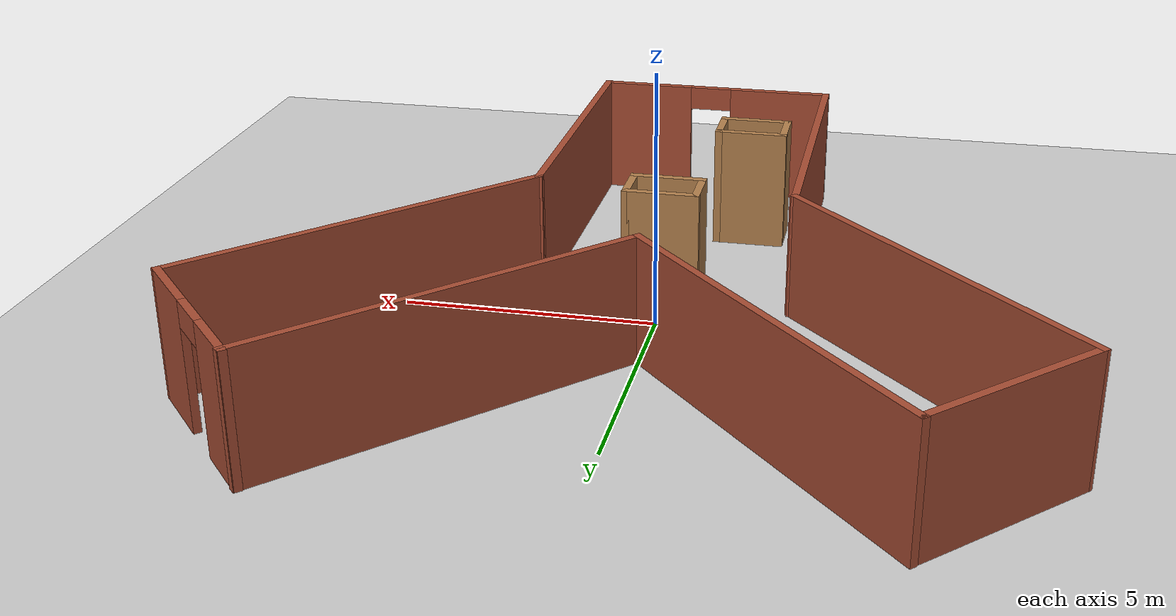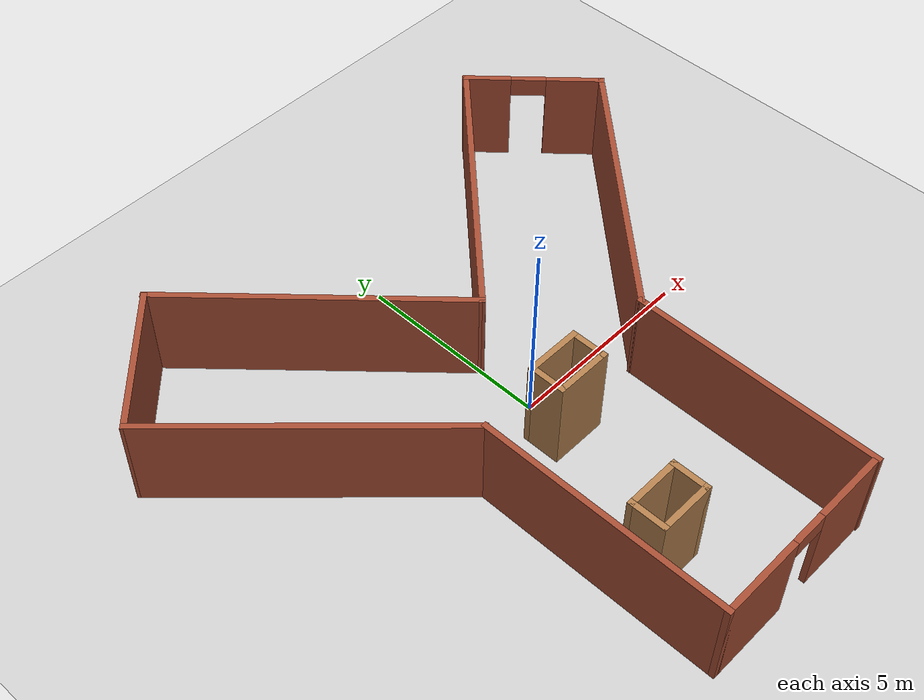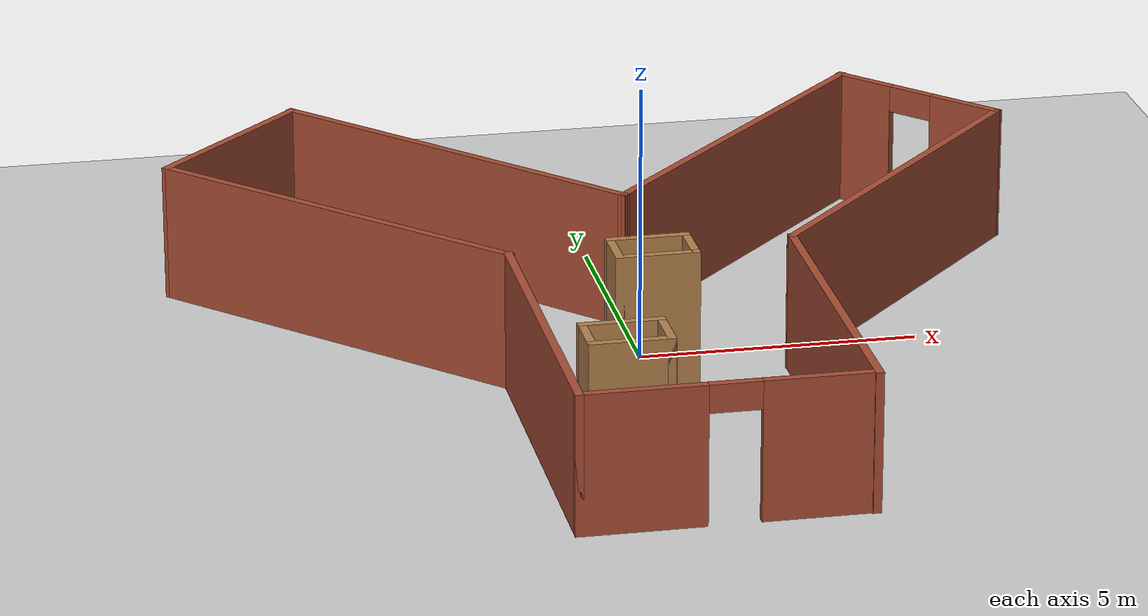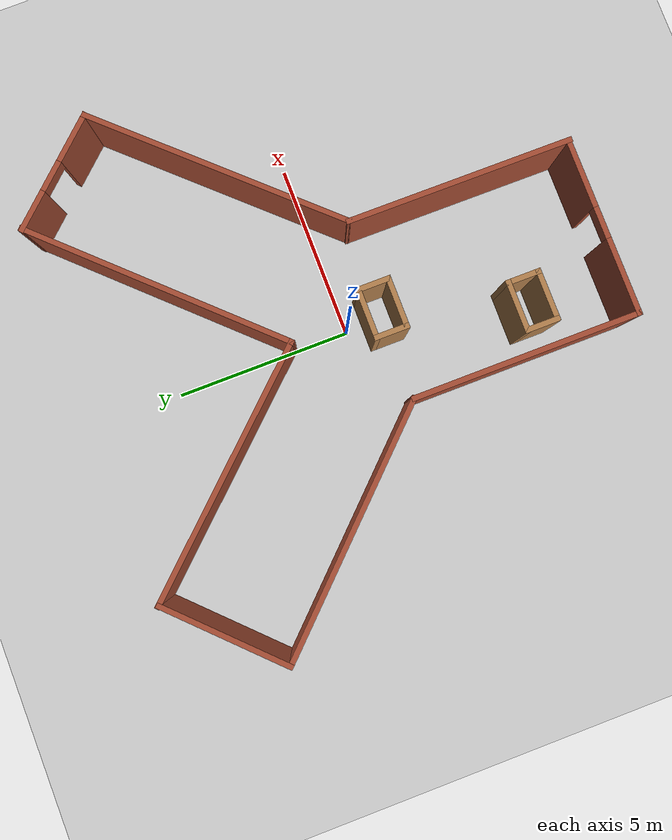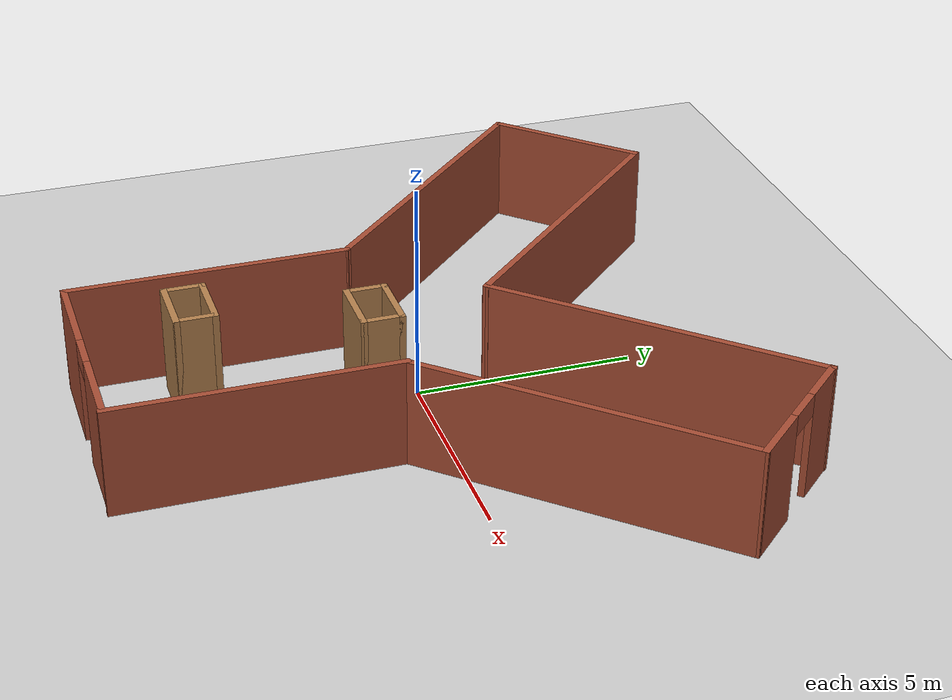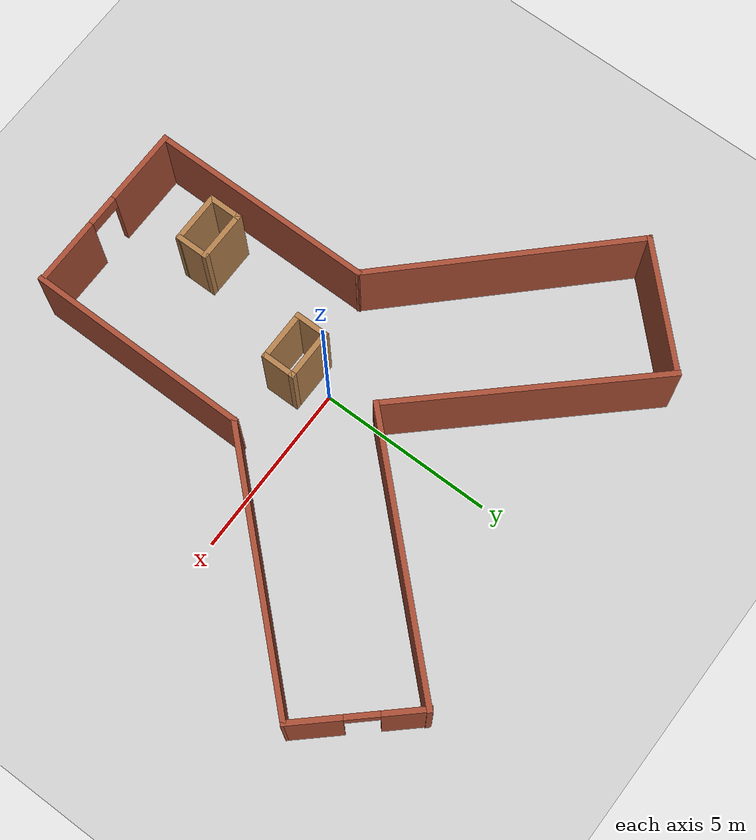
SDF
<?xml version='1.0' encoding='utf-8'?>

<sdf version='1.6'>
    <world name="test_world">
        <include>
            <uri>model://ground_plane</uri>
        </include>
        <include>
            <uri>model://sun</uri>
        </include>
        <!-- TEst floor plan-->
        <model name='coding_assesment_world'>
            <pose>-0.032434 -0.019324 0 0 -0 0</pose>
            <link name='Wall_0'>
              <collision name='Wall_0_Collision'>
                <geometry>
                  <box>
                    <size>6.5 0.15 2.5</size>
                  </box>
                </geometry>
                <pose>0 0 1.25 0 -0 0</pose>
              </collision>
              <visual name='Wall_0_Visual'>
                <pose>0 0 1.25 0 -0 0</pose>
                <geometry>
                  <box>
                    <size>6.5 0.15 2.5</size>
                  </box>
                </geometry>
                <material>
                  <script>
                    <uri>file://media/materials/scripts/gazebo.material</uri>
                    <name>Gazebo/Bricks</name>
                  </script>
                  <ambient>1 1 1 1</ambient>
                </material>
                <meta>
                  <layer>0</layer>
                </meta>
              </visual>
              <pose>-2.47391 -4.0494 0 0 -0 1.5708</pose>
            </link>
            <link name='Wall_1'>
              <collision name='Wall_1_Collision'>
                <geometry>
                  <box>
                    <size>7.71746 0.15 2.5</size>
                  </box>
                </geometry>
                <pose>0 0 1.25 0 -0 0</pose>
              </collision>
              <visual name='Wall_1_Visual'>
                <pose>0 0 1.25 0 -0 0</pose>
                <geometry>
                  <box>
                    <size>7.71746 0.15 2.5</size>
                  </box>
                </geometry>
                <material>
                  <script>
                    <uri>file://media/materials/scripts/gazebo.material</uri>
                    <name>Gazebo/Bricks</name>
                  </script>
                  <ambient>1 1 1 1</ambient>
                </material>
                <meta>
                  <layer>0</layer>
                </meta>
              </visual>
              <pose>-5.11019 1.83976 0 0 -0 2.34164</pose>
            </link>
            <link name='Wall_10'>
              <pose>-0.048913 -7.2244 0 0 -0 0</pose>
              <visual name='Wall_10_Visual_0'>
                <pose>-1.3932 0 1.25 0 -0 0</pose>
                <geometry>
                  <box>
                    <size>2.21361 0.15 2.5</size>
                  </box>
                </geometry>
                <material>
                  <script>
                    <uri>file://media/materials/scripts/gazebo.material</uri>
                    <name>Gazebo/Bricks</name>
                  </script>
                  <ambient>1 1 1 1</ambient>
                </material>
                <meta>
                  <layer>0</layer>
                </meta>
              </visual>
              <collision name='Wall_10_Collision_0'>
                <geometry>
                  <box>
                    <size>2.21361 0.15 2.5</size>
                  </box>
                </geometry>
                <pose>-1.3932 0 1.25 0 -0 0</pose>
              </collision>
              <visual name='Wall_10_Visual_1'>
                <pose>1.5568 0 1.25 0 -0 0</pose>
                <geometry>
                  <box>
                    <size>1.88639 0.15 2.5</size>
                  </box>
                </geometry>
                <material>
                  <script>
                    <uri>file://media/materials/scripts/gazebo.material</uri>
                    <name>Gazebo/Bricks</name>
                  </script>
                  <ambient>1 1 1 1</ambient>
                </material>
                <meta>
                  <layer>0</layer>
                </meta>
              </visual>
              <collision name='Wall_10_Collision_1'>
                <geometry>
                  <box>
                    <size>1.88639 0.15 2.5</size>
                  </box>
                </geometry>
                <pose>1.5568 0 1.25 0 -0 0</pose>
              </collision>
              <visual name='Wall_10_Visual_2'>
                <pose>0.163608 0 2.25 0 -0 0</pose>
                <geometry>
                  <box>
                    <size>0.9 0.15 0.5</size>
                  </box>
                </geometry>
                <material>
                  <script>
                    <uri>file://media/materials/scripts/gazebo.material</uri>
                    <name>Gazebo/Bricks</name>
                  </script>
                  <ambient>1 1 1 1</ambient>
                </material>
                <meta>
                  <layer>0</layer>
                </meta>
              </visual>
              <collision name='Wall_10_Collision_2'>
                <geometry>
                  <box>
                    <size>0.9 0.15 0.5</size>
                  </box>
                </geometry>
                <pose>0.163608 0 2.25 0 -0 0</pose>
              </collision>
            </link>
            <link name='Wall_12'>
              <collision name='Wall_12_Collision'>
                <geometry>
                  <box>
                    <size>1 0.15 2.5</size>
                  </box>
                </geometry>
                <pose>0 0 1.25 0 -0 0</pose>
              </collision>
              <visual name='Wall_12_Visual'>
                <pose>0 0 1.25 0 -0 0</pose>
                <geometry>
                  <box>
                    <size>1 0.15 2.5</size>
                  </box>
                </geometry>
                <material>
                  <script>
                    <uri>file://media/materials/scripts/gazebo.material</uri>
                    <name>Gazebo/Wood</name>
                  </script>
                  <ambient>1 1 1 1</ambient>
                </material>
                <meta>
                  <layer>0</layer>
                </meta>
              </visual>
              <pose>-0.628069 -0.957896 0 0 -0 -1.5708</pose>
            </link>
            <link name='Wall_13'>
              <collision name='Wall_13_Collision'>
                <geometry>
                  <box>
                    <size>1.5 0.15 2.5</size>
                  </box>
                </geometry>
                <pose>0 0 1.25 0 -0 0</pose>
              </collision>
              <visual name='Wall_13_Visual'>
                <pose>0 0 1.25 0 -0 0</pose>
                <geometry>
                  <box>
                    <size>1.5 0.15 2.5</size>
                  </box>
                </geometry>
                <material>
                  <script>
                    <uri>file://media/materials/scripts/gazebo.material</uri>
                    <name>Gazebo/Wood</name>
                  </script>
                  <ambient>1 1 1 1</ambient>
                </material>
                <meta>
                  <layer>0</layer>
                </meta>
              </visual>
              <pose>0.046931 -1.3829 0 0 -0 0</pose>
            </link>
            <link name='Wall_14'>
              <collision name='Wall_14_Collision'>
                <geometry>
                  <box>
                    <size>1 0.15 2.5</size>
                  </box>
                </geometry>
                <pose>0 0 1.25 0 -0 0</pose>
              </collision>
              <visual name='Wall_14_Visual'>
                <pose>0 0 1.25 0 -0 0</pose>
                <geometry>
                  <box>
                    <size>1 0.15 2.5</size>
                  </box>
                </geometry>
                <material>
                  <script>
                    <uri>file://media/materials/scripts/gazebo.material</uri>
                    <name>Gazebo/Wood</name>
                  </script>
                  <ambient>1 1 1 1</ambient>
                </material>
                <meta>
                  <layer>0</layer>
                </meta>
              </visual>
              <pose>0.721931 -0.957896 0 0 -0 1.5708</pose>
            </link>
            <link name='Wall_15'>
              <collision name='Wall_15_Collision'>
                <geometry>
                  <box>
                    <size>1.5 0.15 2.5</size>
                  </box>
                </geometry>
                <pose>0 0 1.25 0 -0 0</pose>
              </collision>
              <visual name='Wall_15_Visual'>
                <pose>0 0 1.25 0 -0 0</pose>
                <geometry>
                  <box>
                    <size>1.5 0.15 2.5</size>
                  </box>
                </geometry>
                <material>
                  <script>
                    <uri>file://media/materials/scripts/gazebo.material</uri>
                    <name>Gazebo/Wood</name>
                  </script>
                  <ambient>1 1 1 1</ambient>
                </material>
                <meta>
                  <layer>0</layer>
                </meta>
              </visual>
              <pose>0.046931 -0.532896 0 0 -0 3.14159</pose>
            </link>
            <link name='Wall_17'>
              <collision name='Wall_17_Collision'>
                <geometry>
                  <box>
                    <size>1 0.15 2.5</size>
                  </box>
                </geometry>
                <pose>0 0 1.25 0 -0 0</pose>
              </collision>
              <visual name='Wall_17_Visual'>
                <pose>0 0 1.25 0 -0 0</pose>
                <geometry>
                  <box>
                    <size>1 0.15 2.5</size>
                  </box>
                </geometry>
                <material>
                  <script>
                    <uri>file://media/materials/scripts/gazebo.material</uri>
                    <name>Gazebo/Wood</name>
                  </script>
                  <ambient>1 1 1 1</ambient>
                </material>
                <meta>
                  <layer>0</layer>
                </meta>
              </visual>
              <pose>-1.8543 -4.73299 0 0 -0 -1.5708</pose>
            </link>
            <link name='Wall_18'>
              <collision name='Wall_18_Collision'>
                <geometry>
                  <box>
                    <size>1.5 0.15 2.5</size>
                  </box>
                </geometry>
                <pose>0 0 1.25 0 -0 0</pose>
              </collision>
              <visual name='Wall_18_Visual'>
                <pose>0 0 1.25 0 -0 0</pose>
                <geometry>
                  <box>
                    <size>1.5 0.15 2.5</size>
                  </box>
                </geometry>
                <material>
                  <script>
                    <uri>file://media/materials/scripts/gazebo.material</uri>
                    <name>Gazebo/Wood</name>
                  </script>
                  <ambient>1 1 1 1</ambient>
                </material>
                <meta>
                  <layer>0</layer>
                </meta>
              </visual>
              <pose>-1.1793 -5.15799 0 0 -0 0</pose>
            </link>
            <link name='Wall_19'>
              <collision name='Wall_19_Collision'>
                <geometry>
                  <box>
                    <size>1 0.15 2.5</size>
                  </box>
                </geometry>
                <pose>0 0 1.25 0 -0 0</pose>
              </collision>
              <visual name='Wall_19_Visual'>
                <pose>0 0 1.25 0 -0 0</pose>
                <geometry>
                  <box>
                    <size>1 0.15 2.5</size>
                  </box>
                </geometry>
                <material>
                  <script>
                    <uri>file://media/materials/scripts/gazebo.material</uri>
                    <name>Gazebo/Wood</name>
                  </script>
                  <ambient>1 1 1 1</ambient>
                </material>
                <meta>
                  <layer>0</layer>
                </meta>
              </visual>
              <pose>-0.504301 -4.73299 0 0 -0 1.5708</pose>
            </link>
            <link name='Wall_2'>
              <collision name='Wall_2_Collision'>
                <geometry>
                  <box>
                    <size>3.86142 0.15 2.5</size>
                  </box>
                </geometry>
                <pose>0 0 1.25 0 -0 0</pose>
              </collision>
              <visual name='Wall_2_Visual'>
                <pose>0 0 1.25 0 -0 0</pose>
                <geometry>
                  <box>
                    <size>3.86142 0.15 2.5</size>
                  </box>
                </geometry>
                <material>
                  <script>
                    <uri>file://media/materials/scripts/gazebo.material</uri>
                    <name>Gazebo/Bricks</name>
                  </script>
                  <ambient>1 1 1 1</ambient>
                </material>
                <meta>
                  <layer>0</layer>
                </meta>
              </visual>
              <pose>-6.43602 5.86783 0 0 -0 0.786716</pose>
            </link>
            <link name='Wall_20'>
              <collision name='Wall_20_Collision'>
                <geometry>
                  <box>
                    <size>1.5 0.15 2.5</size>
                  </box>
                </geometry>
                <pose>0 0 1.25 0 -0 0</pose>
              </collision>
              <visual name='Wall_20_Visual'>
                <pose>0 0 1.25 0 -0 0</pose>
                <geometry>
                  <box>
                    <size>1.5 0.15 2.5</size>
                  </box>
                </geometry>
                <material>
                  <script>
                    <uri>file://media/materials/scripts/gazebo.material</uri>
                    <name>Gazebo/Wood</name>
                  </script>
                  <ambient>1 1 1 1</ambient>
                </material>
                <meta>
                  <layer>0</layer>
                </meta>
              </visual>
              <pose>-1.1793 -4.30799 0 0 -0 3.14159</pose>
            </link>
            <link name='Wall_3'>
              <collision name='Wall_3_Collision'>
                <geometry>
                  <box>
                    <size>7.77805 0.15 2.5</size>
                  </box>
                </geometry>
                <pose>0 0 1.25 0 -0 0</pose>
              </collision>
              <visual name='Wall_3_Visual'>
                <pose>0 0 1.25 0 -0 0</pose>
                <geometry>
                  <box>
                    <size>7.77805 0.15 2.5</size>
                  </box>
                </geometry>
                <material>
                  <script>
                    <uri>file://media/materials/scripts/gazebo.material</uri>
                    <name>Gazebo/Bricks</name>
                  </script>
                  <ambient>1 1 1 1</ambient>
                </material>
                <meta>
                  <layer>0</layer>
                </meta>
              </visual>
              <pose>-2.53497 4.40264 0 0 -0 -0.824086</pose>
            </link>
            <link name='Wall_4'>
              <collision name='Wall_4_Collision'>
                <geometry>
                  <box>
                    <size>7.91424 0.15 2.5</size>
                  </box>
                </geometry>
                <pose>0 0 1.25 0 -0 0</pose>
              </collision>
              <visual name='Wall_4_Visual'>
                <pose>0 0 1.25 0 -0 0</pose>
                <geometry>
                  <box>
                    <size>7.91424 0.15 2.5</size>
                  </box>
                </geometry>
                <material>
                  <script>
                    <uri>file://media/materials/scripts/gazebo.material</uri>
                    <name>Gazebo/Bricks</name>
                  </script>
                  <ambient>1 1 1 1</ambient>
                </material>
                <meta>
                  <layer>0</layer>
                </meta>
              </visual>
              <pose>2.73495 4.4127 0 0 -0 0.809069</pose>
            </link>
            <link name='Wall_5'>
              <pose>6.56884 5.92889 0 0 -0 -0.832066</pose>
              <visual name='Wall_5_Visual_0'>
                <pose>-1.1985 0 1.25 0 -0 0</pose>
                <geometry>
                  <box>
                    <size>1.251 0.15 2.5</size>
                  </box>
                </geometry>
                <material>
                  <script>
                    <uri>file://media/materials/scripts/gazebo.material</uri>
                    <name>Gazebo/Bricks</name>
                  </script>
                  <ambient>1 1 1 1</ambient>
                </material>
                <meta>
                  <layer>0</layer>
                </meta>
              </visual>
              <collision name='Wall_5_Collision_0'>
                <geometry>
                  <box>
                    <size>1.251 0.15 2.5</size>
                  </box>
                </geometry>
                <pose>-1.1985 0 1.25 0 -0 0</pose>
              </collision>
              <visual name='Wall_5_Visual_1'>
                <pose>1.0755 0 1.25 0 -0 0</pose>
                <geometry>
                  <box>
                    <size>1.49701 0.15 2.5</size>
                  </box>
                </geometry>
                <material>
                  <script>
                    <uri>file://media/materials/scripts/gazebo.material</uri>
                    <name>Gazebo/Bricks</name>
                  </script>
                  <ambient>1 1 1 1</ambient>
                </material>
                <meta>
                  <layer>0</layer>
                </meta>
              </visual>
              <collision name='Wall_5_Collision_1'>
                <geometry>
                  <box>
                    <size>1.49701 0.15 2.5</size>
                  </box>
                </geometry>
                <pose>1.0755 0 1.25 0 -0 0</pose>
              </collision>
              <visual name='Wall_5_Visual_2'>
                <pose>-0.123005 0 2.25 0 -0 0</pose>
                <geometry>
                  <box>
                    <size>0.9 0.15 0.5</size>
                  </box>
                </geometry>
                <material>
                  <script>
                    <uri>file://media/materials/scripts/gazebo.material</uri>
                    <name>Gazebo/Bricks</name>
                  </script>
                  <ambient>1 1 1 1</ambient>
                </material>
                <meta>
                  <layer>0</layer>
                </meta>
              </visual>
              <collision name='Wall_5_Collision_2'>
                <geometry>
                  <box>
                    <size>0.9 0.15 0.5</size>
                  </box>
                </geometry>
                <pose>-0.123005 0 2.25 0 -0 0</pose>
              </collision>
            </link>
            <link name='Wall_6'>
              <collision name='Wall_6_Collision'>
                <geometry>
                  <box>
                    <size>7.78981 0.15 2.5</size>
                  </box>
                </geometry>
                <pose>0 0 1.25 0 -0 0</pose>
              </collision>
              <visual name='Wall_6_Visual'>
                <pose>0 0 1.25 0 -0 0</pose>
                <geometry>
                  <box>
                    <size>7.78981 0.15 2.5</size>
                  </box>
                </geometry>
                <material>
                  <script>
                    <uri>file://media/materials/scripts/gazebo.material</uri>
                    <name>Gazebo/Bricks</name>
                  </script>
                  <ambient>1 1 1 1</ambient>
                </material>
                <meta>
                  <layer>0</layer>
                </meta>
              </visual>
              <pose>5.14442 1.83926 0 0 -0 -2.3202</pose>
            </link>
            <link name='Wall_7'>
              <collision name='Wall_7_Collision'>
                <geometry>
                  <box>
                    <size>6.44574 0.15 2.5</size>
                  </box>
                </geometry>
                <pose>0 0 1.25 0 -0 0</pose>
              </collision>
              <visual name='Wall_7_Visual'>
                <pose>0 0 1.25 0 -0 0</pose>
                <geometry>
                  <box>
                    <size>6.44574 0.15 2.5</size>
                  </box>
                </geometry>
                <material>
                  <script>
                    <uri>file://media/materials/scripts/gazebo.material</uri>
                    <name>Gazebo/Bricks</name>
                  </script>
                  <ambient>1 1 1 1</ambient>
                </material>
                <meta>
                  <layer>0</layer>
                </meta>
              </visual>
              <pose>2.51543 -4.10484 0 0 -0 -1.57513</pose>
            </link>
            <static>1</static>
          </model>
    </world>

</sdf>
